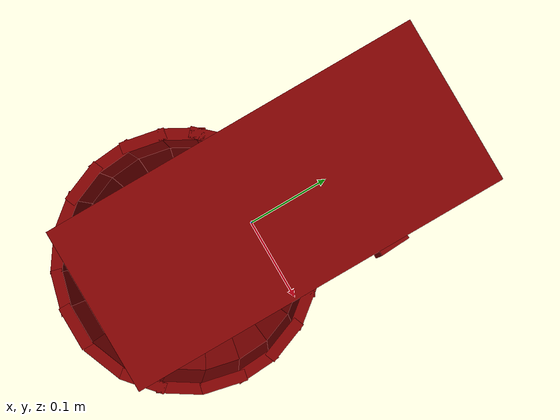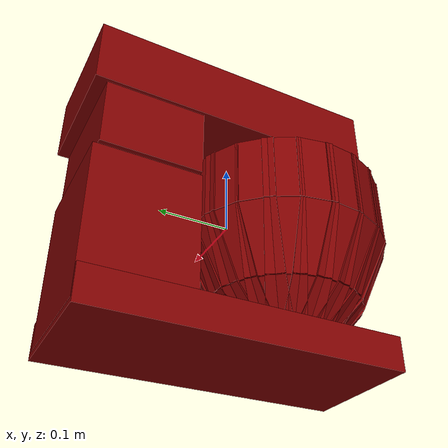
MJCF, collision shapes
<?xml version='1.0' encoding='UTF-8'?>
<mujoco model="model">
  <compiler angle="radian"/>
  <asset>
    <mesh file="visuals/Blender001.obj" name="Blender001_vis"/>
    <mesh file="visuals/Body001.obj" name="Body001_vis"/>
    <mesh file="visuals/Button001.obj" name="Button001_vis"/>
    <mesh file="visuals/Container001_Clear.obj" name="Container001_Clear_vis"/>
    <mesh file="visuals/Knob001.obj" name="Knob001_vis"/>
    <mesh file="visuals/Lid001.obj" name="Lid001_vis"/>
    <texture file="visuals/T_BC001.png" name="Body001_material" type="2d"/>
    <material name="Body001_material" rgba="1 1 1 1.0" texture="Body001_material" shininess="0.4472135901451111" specular="0.3103448502657381"/>
    <texture file="visuals/T_BC001.png" name="Button001_material" type="2d"/>
    <material name="Button001_material" rgba="1 1 1 1.0" texture="Button001_material" shininess="0.4472135901451111" specular="0.3103448502657381"/>
    <material name="Container001_Clear_material" rgba="0.550000011920929 0.550000011920929 0.550000011920929 0.8367000222206116" shininess="0.4472135901451111" specular="0.33333333333333337"/>
    <texture file="visuals/T_BC001.png" name="Knob001_material" type="2d"/>
    <material name="Knob001_material" rgba="1 1 1 1.0" texture="Knob001_material" shininess="0.4472135901451111" specular="0.3103448502657381"/>
    <texture file="visuals/T_BC001.png" name="Lid001_material" type="2d"/>
    <material name="Lid001_material" rgba="1 1 1 1.0" texture="Lid001_material" shininess="0.4472135901451111" specular="0.3103448502657381"/>
    <texture file="visuals/T_BC001.png" name="Blender001_material" type="2d"/>
    <material name="Blender001_material" rgba="1 1 1 1.0" texture="Blender001_material" shininess="0.4472135901451111" specular="0.3103448502657381"/>
  </asset>
  <default>
    <default class="visual">
      <geom conaffinity="0" contype="0" group="1" type="mesh"/>
    </default>
    <default class="collision">
      <geom group="0" rgba="0.5 0 0 0.5"/>
    </default>
    <default class="spawn">
      <geom group="0" rgba="1 1 1 0.5" contype="0" conaffinity="0"/>
      <site group="0" rgba="1 1 1 0.5"/>
    </default>
    <default class="region">
      <geom group="1" conaffinity="0" contype="0" rgba="0 1 0 0"/>
    </default>
  </default>
  <worldbody>
    <body>
      <body name="object">
        <geom mesh="Body001_vis" type="mesh" solimp="0.998 0.998 0.001" solref="0.001 1" density="100" friction="0.95 0.3 0.1" class="visual" material="Body001_material"/>
        <geom class="collision" type="box" pos="-0.001267 0.008390 -0.176519" size="0.08812396228313446 0.21000923216342926 0.02334430068731308" quat="1.0 0.0 0.0 0.0"/>
        <geom class="collision" type="box" pos="-0.004152 0.147999 -0.092349" size="0.08092296123504639 0.07070896774530411 0.10016398131847382" quat="1.0 0.0 0.0 0.0"/>
        <body name="Button001">
          <joint axis="-1.0 0.0 0.0" pos="0.087002 0.140490 -0.005048" limited="true" name="Button001_joint" range="0.0 0.005" type="slide" damping="1" frictionloss="1" armature=".01" stiffness="0.05"/>
          <geom mesh="Button001_vis" type="mesh" solimp="0.998 0.998 0.001" solref="0.001 1" density="100" friction="0.95 0.3 0.1" class="visual" material="Button001_material"/>
          <geom class="collision" type="box" pos="0.087350 0.140468 -0.005045" size="0.0029871950391680002 0.014176048338413239 0.0065616038627922535" quat="1.0 0.0 0.0 0.0"/>
        </body>
        <body name="Container001_Clear">
          <joint axis="0.0 0.0 1.0" pos="-0.000001 -0.083894 -0.054993" limited="true" name="Container001_Clear_joint" range="0.0 0.1" type="slide" damping="1" frictionloss="1" armature=".01" stiffness="0.05"/>
          <geom mesh="Container001_Clear_vis" type="mesh" solimp="0.998 0.998 0.001" solref="0.001 1" density="100" friction="0.95 0.3 0.1" class="visual" material="Container001_Clear_material"/>
          <geom class="collision" type="box" pos="-0.000001 0.054424 0.027481" size="0.02570558898150921 0.006458584684878588 0.046938300132751465" quat="1.0 0.0 0.0 0.0"/>
          <geom class="collision" type="box" pos="-0.000001 0.036126 -0.061248" size="0.025705575942993164 0.006458582356572151 0.04693828150629997" quat="0.9767361283302307 -0.21444463729858398 4.7616301237035316e-17 -2.0794026362827574e-24"/>
          <geom class="collision" type="box" pos="-0.000001 -0.002264 -0.124216" size="0.025705575942993164 0.006458582356572151 0.028294935822486877" quat="0.9315438866615295 -0.36362892389297485 8.074186059746458e-17 2.0799648968929537e-24"/>
          <geom class="collision" type="box" pos="0.080734 0.028414 0.027481" size="0.025705575942993164 0.006458581890910864 0.046938277781009674" quat="0.9518256187438965 0.0 0.0 -0.3066398501396179"/>
          <geom class="collision" type="box" pos="0.047643 -0.017613 -0.124216" size="0.025705575942993164 0.006458581890910864 0.028294933959841728" quat="0.8866673111915588 -0.34611135721206665 0.11150312423706055 -0.2856484651565552"/>
          <geom class="collision" type="box" pos="0.070053 0.013557 -0.061248" size="0.025705575942993164 0.006458581890910864 0.04693828150629997" quat="0.9296824932098389 -0.2041138857603073 0.06575727462768555 -0.29950621724128723"/>
          <geom class="collision" type="box" pos="0.111756 -0.040151 -0.061248" size="0.025705577805638313 0.0064585828222334385 0.046938277781009674" quat="0.8067450523376465 -0.17712277173995972 0.1208885982632637 -0.550614058971405"/>
          <geom class="collision" type="box" pos="0.076007 -0.054141 -0.124216" size="0.025705579668283463 0.006458581890910864 0.028294935822486877" quat="0.7694183588027954 -0.30034303665161133 0.20498785376548767 -0.5251375436782837"/>
          <geom class="collision" type="box" pos="0.128796 -0.033482 0.027481" size="0.025705577805638313 0.006458582356572151 0.046938277781009674" quat="0.8259603381156921 0.0 0.0 -0.5637282133102417"/>
          <geom class="collision" type="box" pos="0.135039 -0.113772 0.027481" size="0.025705577805638313 0.006458582356572151 0.046938277781009674" quat="0.6260642409324646 0.0 0.0 -0.7797715067863464"/>
          <geom class="collision" type="box" pos="0.079691 -0.101522 -0.124216" size="0.025705577805638313 0.006458581425249577 0.028294933959841728" quat="0.583206295967102 -0.2276550829410553 0.2835474908351898 -0.7263913750648499"/>
          <geom class="collision" type="box" pos="0.117174 -0.109818 -0.061248" size="0.025705577805638313 0.006458581425249577 0.04693828150629997" quat="0.611499547958374 -0.13425613939762115 0.16721783578395844 -0.7616310119628906"/>
          <geom class="collision" type="box" pos="0.078255 -0.174870 -0.061248" size="0.025705577805638313 0.0064585828222334385 0.046938277781009674" quat="0.3396555781364441 -0.07457218319177628 0.20106098055839539 -0.9157770276069641"/>
          <geom class="collision" type="box" pos="0.053222 -0.145765 -0.124216" size="0.025705577805638313 0.006458581890910864 0.028294933959841728" quat="0.3239401578903198 -0.12645037472248077 0.3409345746040344 -0.8734052181243896"/>
          <geom class="collision" type="box" pos="0.090187 -0.188743 0.027481" size="0.025705577805638313 0.006458582356572151 0.046938277781009674" quat="0.3477453589439392 0.0 0.0 -0.9375889897346497"/>
          <geom class="collision" type="box" pos="0.001914 -0.222180 0.027481" size="0.025792572647333145 0.006813990417867899 0.046938296407461166" quat="1.0 0.0 0.0 0.0"/>
          <geom class="collision" type="box" pos="0.001129 -0.165498 -0.124216" size="0.025705575942993164 0.006458581890910864 0.028294933959841728" quat="0.006451169960200787 -0.0025182198733091354 0.36362025141716003 -0.9315215349197388"/>
          <geom class="collision" type="box" pos="0.001661 -0.203884 -0.061248" size="0.025705575942993164 0.006458581890910864 0.046938277781009674" quat="0.00676413718611002 -0.0014850822044536471 0.21443955600261688 -0.976712703704834"/>
          <geom class="collision" type="box" pos="-0.068516 -0.182415 -0.061248" size="0.025705575942993164 0.006458580959588289 0.04693828150629997" quat="0.2921915054321289 -0.06415130198001862 -0.20462433993816376 0.9320073127746582"/>
          <geom class="collision" type="box" pos="-0.046599 -0.150897 -0.124216" size="0.025705575942993164 0.006458581425249577 0.02829493209719658" quat="0.27867206931114197 -0.10877995938062668 -0.3469770550727844 0.8888845443725586"/>
          <geom class="collision" type="box" pos="-0.078962 -0.197439 0.027481" size="0.025705575942993164 0.006458581890910864 0.046938277781009674" quat="0.29915091395378113 0.0 0.0 0.9542058110237122"/>
          <geom class="collision" type="box" pos="-0.128078 -0.136092 0.027481" size="0.025705574080348015 0.006458581425249577 0.046938277781009674" quat="0.5579116940498352 0.0 0.0 0.829900324344635"/>
          <geom class="collision" type="box" pos="-0.075584 -0.114694 -0.124216" size="0.025705577805638313 0.006458581890910864 0.028294935822486877" quat="0.5197193622589111 -0.2028728574514389 -0.3017757833003998 0.7730884552001953"/>
          <geom class="collision" type="box" pos="-0.111134 -0.129185 -0.061248" size="0.025705577805638313 0.006458581890910864 0.046938277781009674" quat="0.5449326634407043 -0.11964122951030731 -0.17796771228313446 0.8105935454368591"/>
          <geom class="collision" type="box" pos="-0.117763 -0.060764 -0.061248" size="0.025705577805638313 0.006458581425249577 0.046938277781009674" quat="0.7542586326599121 -0.16559924185276031 -0.1362476497888565 0.6205702424049377"/>
          <geom class="collision" type="box" pos="-0.080093 -0.068160 -0.124216" size="0.025705577805638313 0.006458582356572151 0.028294933959841728" quat="0.7193601727485657 -0.28080278635025024 -0.23103196918964386 0.5918571949005127"/>
          <geom class="collision" type="box" pos="-0.135719 -0.057239 0.027481" size="0.025705577805638313 0.006458582356572151 0.046938277781009674" quat="0.7722236514091492 0.0 0.0 0.6353508234024048"/>
          <geom class="collision" type="box" pos="-0.101329 0.010253 0.027481" size="0.025705577805638313 0.006458582356572151 0.046938277781009674" quat="0.9166881442070007 0.0 0.0 0.39960339665412903"/>
          <geom class="collision" type="box" pos="-0.059799 -0.028331 -0.124216" size="0.025705575942993164 0.006458581890910864 0.028294933959841728" quat="0.853935182094574 -0.33333441615104675 -0.14530742168426514 0.3722480535507202"/>
          <geom class="collision" type="box" pos="-0.087924 -0.002202 -0.061248" size="0.025705575942993164 0.006458582356572151 0.046938277781009674" quat="0.8953624367713928 -0.19657891988754272 -0.08569283783435822 0.39030706882476807"/>
          <geom class="collision" type="box" pos="-0.057267 0.021581 -0.061248" size="0.025705577805638313 0.006458581890910864 0.04693828523159027" quat="0.9466809034347534 -0.207846000790596 -0.052787940949201584 0.2404344528913498"/>
          <geom class="collision" type="box" pos="-0.038949 -0.012156 -0.124216" size="0.025705575942993164 0.006458581425249577 0.028294933959841728" quat="0.9028792977333069 -0.35243967175483704 -0.08951130509376526 0.2293098419904709"/>
          <geom class="collision" type="box" pos="-0.065998 0.037662 0.027481" size="0.025705575942993164 0.006458581890910864 0.046938277781009674" quat="0.9692289233207703 0.0 0.0 0.24616104364395142"/>
          <geom class="collision" type="box" pos="-0.034382 0.050082 0.027481" size="0.025705579668283463 0.0064585828222334385 0.046938277781009674" quat="0.9921219944953918 0.0 0.0 0.12527567148208618"/>
          <geom class="collision" type="box" pos="-0.020290 -0.004826 -0.124216" size="0.025705577805638313 0.006458581890910864 0.028294937685132027" quat="0.9242050647735596 -0.36076441407203674 -0.04555392265319824 0.11669988930225372"/>
          <geom class="collision" type="box" pos="-0.029833 0.032359 -0.061248" size="0.025705575942993164 0.006458581890910864 0.04693828150629997" quat="0.9690413475036621 -0.21275539696216583 -0.026864733546972275 0.12236134707927704"/>
          <geom class="collision" type="box" pos="0.033231 0.031432 -0.061248" size="0.025705574080348015 0.006458582356572151 0.046938277781009674" quat="0.9671400785446167 -0.21233786642551422 0.029985971748828888 -0.136577770113945"/>
          <geom class="collision" type="box" pos="0.022601 -0.005456 -0.124216" size="0.025705575942993164 0.006458581890910864 0.028294933959841728" quat="0.9223918318748474 -0.36005645990371704 0.050846535712480545 -0.13025857508182526"/>
          <geom class="collision" type="box" pos="0.038298 0.049015 0.027481" size="0.025705575942993164 0.006458581890910864 0.046938277781009674" quat="0.9901754260063171 0.0 0.0 -0.13983088731765747"/>
          <geom class="collision" type="box" pos="0.108003 0.002511 0.027481" size="0.025705575942993164 0.006458581890910864 0.046938277781009674" quat="0.9012930989265442 0.0 0.0 -0.4332098364830017"/>
          <geom class="collision" type="box" pos="0.063736 -0.032900 -0.124216" size="0.025705575942993164 0.006458581890910864 0.028294933959841728" quat="0.8395941257476807 -0.3277362585067749 0.1575275957584381 -0.40355387330055237"/>
          <geom class="collision" type="box" pos="0.093714 -0.008919 -0.061248" size="0.025705575942993164 0.006458582356572151 0.046938277781009674" quat="0.8803255558013916 -0.1932775378227234 0.09289952367544174 -0.4231316149234772"/>
          <geom class="collision" type="box" pos="0.119729 -0.075692 -0.061248" size="0.025705575942993164 0.006458581890910864 0.04693828150629997" quat="0.7138432264328003 -0.15672601759433746 0.14636774361133575 -0.6666643023490906"/>
          <geom class="collision" type="box" pos="0.081429 -0.078313 -0.124216" size="0.025705575942993164 0.006458581890910864 0.028294935822486877" quat="0.6808146834373474 -0.26575663685798645 0.24819232523441315 -0.6358186602592468"/>
          <geom class="collision" type="box" pos="0.137984 -0.074442 0.027481" size="0.025705577805638313 0.006458582356572151 0.046938277781009674" quat="0.7308457493782043 0.0 0.0 -0.6825426816940308"/>
          <geom class="collision" type="box" pos="0.116759 -0.158021 0.027481" size="0.025705575942993164 0.006458581890910864 0.046938277781009674" quat="0.48165175318717957 0.0 0.0 -0.876362681388855"/>
          <geom class="collision" type="box" pos="0.068903 -0.127635 -0.124216" size="0.025705575942993164 0.006458581890910864 0.028294933959841728" quat="0.4486798346042633 -0.1751425564289093 0.31867077946662903 -0.8163702487945557"/>
          <geom class="collision" type="box" pos="0.101312 -0.148213 -0.061248" size="0.025705575942993164 0.006458581890910864 0.04693828150629997" quat="0.4704466760158539 -0.10328767448663712 0.18793144822120667 -0.8559750914573669"/>
          <geom class="collision" type="box" pos="0.043483 -0.195740 -0.061248" size="0.025705574080348015 0.006458581890910864 0.046938274055719376" quat="0.18004021048545837 -0.03952828422188759 0.21077024936676025 -0.9599994421005249"/>
          <geom class="collision" type="box" pos="0.029573 -0.159959 -0.124216" size="0.025705574080348015 0.006458582356572151 0.028294935822486877" quat="0.17170999944210052 -0.06702714413404465 0.3573980927467346 -0.9155815839767456"/>
          <geom class="collision" type="box" pos="0.050113 -0.212795 0.027481" size="0.025705574080348015 0.006458581425249577 0.046938277781009674" quat="0.18432840704917908 0.0 0.0 -0.9828647375106812"/>
          <geom class="collision" type="box" pos="-0.037824 -0.216921 0.027481" size="0.025705577805638313 0.006458582356572151 0.046938277781009674" quat="0.1380549669265747 0.0 0.0 0.9904245734214783"/>
          <geom class="collision" type="box" pos="-0.022322 -0.162394 -0.124216" size="0.025705577805638313 0.006458582356572151 0.028294935822486877" quat="0.12860426306724548 -0.05020077899098396 -0.36014705896377563 0.9226239323616028"/>
          <geom class="collision" type="box" pos="-0.032820 -0.199321 -0.061248" size="0.025705577805638313 0.0064585828222334385 0.04693828150629997" quat="0.13484327495098114 -0.029605163261294365 -0.21239140629768372 0.9673834443092346"/>
          <geom class="collision" type="box" pos="-0.093779 -0.158773 -0.061248" size="0.025705575942993164 0.006458581890910864 0.046938277781009674" quat="0.42349377274513245 -0.0929790511727333 -0.19323931634426117 0.8801513910293579"/>
          <geom class="collision" type="box" pos="-0.063781 -0.134817 -0.124216" size="0.025705575942993164 0.006458581890910864 0.028294933959841728" quat="0.40389928221702576 -0.15766246616840363 -0.3276715576648712 0.8394279479980469"/>
          <geom class="collision" type="box" pos="-0.108077 -0.170192 0.027481" size="0.025705575942993164 0.006458581890910864 0.046938277781009674" quat="0.43358051776885986 0.0 0.0 0.901114821434021"/>
          <geom class="collision" type="box" pos="-0.137741 -0.096418 0.027481" size="0.025705575942993164 0.006458581890910864 0.046938277781009674" quat="0.6743085384368896 0.0 0.0 0.73844975233078"/>
          <geom class="collision" type="box" pos="-0.081286 -0.091281 -0.124216" size="0.025705574080348015 0.006458582356572151 0.028294933959841728" quat="0.6281480193138123 -0.24519814550876617 -0.26852166652679443 0.6878982782363892"/>
          <geom class="collision" type="box" pos="-0.119518 -0.094760 -0.061248" size="0.025705575942993164 0.006458581890910864 0.046938277781009674" quat="0.6586214900016785 -0.14460185170173645 -0.1583566665649414 0.7212705612182617"/>
          <geom class="collision" type="box" pos="-0.105114 -0.025972 -0.061248" size="0.025705577805638313 0.006458581890910864 0.04693828150629997" quat="0.8409484624862671 -0.1846322864294052 -0.10907559096813202 0.4968089163303375"/>
          <geom class="collision" type="box" pos="-0.071490 -0.044497 -0.124216" size="0.025705575942993164 0.006458582356572151 0.028294935822486877" quat="0.8020390272140503 -0.31307661533355713 -0.184956893324852 0.47382208704948425"/>
          <geom class="collision" type="box" pos="-0.121140 -0.017142 0.027481" size="0.025705575942993164 0.006458581890910864 0.046938277781009674" quat="0.8609783053398132 0.0 0.0 0.5086416602134705"/>
          <geom class="collision" type="cylinder" pos="-0.000193 -0.083554 -0.150552" size="0.06042349338531494 0.0023591474164277315" quat="1.0 0.0 0.0 0.0"/>
        </body>
        <body name="Knob001">
          <joint axis="-1.0 0.0 0.0" pos="0.098159 0.141571 -0.114639" limited="true" name="Knob001_joint" range="0.0 5.061454830783556" type="hinge" damping="0.05" armature="0.001"/>
          <geom mesh="Knob001_vis" type="mesh" solimp="0.998 0.998 0.001" solref="0.001 1" density="100" friction="0.95 0.3 0.1" class="visual" material="Knob001_material"/>
          <geom class="collision" type="cylinder" pos="0.093969 0.141333 -0.114440" size="0.03240782395005226 0.0019367868080735207" quat="0.7071068286895752 -0.0 0.7071067690849304 0.0"/>
          <geom class="collision" type="box" pos="0.107677 0.141329 -0.114378" size="0.011869127862155437 0.0072041647508740425 0.02584173157811165" quat="0.8660253882408142 0.5 0.0 0.0"/>
        </body>
        <body name="Lid001">
          <joint axis="-1.0 0.0 0.0" pos="-0.000001 0.208847 0.015020" limited="true" name="Lid001_joint" range="0.0 1.5707963267948966" type="hinge" damping="1" frictionloss="1" armature=".01" stiffness="0.05"/>
          <geom mesh="Lid001_vis" type="mesh" solimp="0.998 0.998 0.001" solref="0.001 1" density="100" friction="0.95 0.3 0.1" class="visual" material="Lid001_material"/>
          <geom class="collision" type="box" pos="-0.001267 0.026437 0.155216" size="0.08812396228313446 0.20114971697330475 0.04650690034031868" quat="1.0 0.0 0.0 0.0"/>
          <geom class="collision" type="cylinder" pos="0.000641 -0.083012 0.094649" size="0.05742409825325012 0.022142428904771805" quat="1.0 0.0 0.0 0.0"/>
          <geom class="collision" type="box" pos="0.000245 0.144240 0.063723" size="0.08468689769506454 0.06694968789815903 0.04944663122296333" quat="1.0 0.0 0.0 0.0"/>
          <body name="Blender001">
            <joint axis="0.0 0.0 1.0" pos="-0.000059 -0.084087 -0.021837" limited="false" name="Blender001_joint" range="0 360" type="hinge" damping="1" frictionloss="1" armature=".01" stiffness="0.05"/>
            <geom mesh="Blender001_vis" type="mesh" solimp="0.998 0.998 0.001" solref="0.001 1" density="100" friction="0.95 0.3 0.1" class="visual" material="Blender001_material"/>
            <geom class="collision" type="cylinder" pos="0.000293 -0.083723 0.055921" size="0.009270640090107918 0.014159394428133965" quat="1.0 0.0 0.0 0.0"/>
            <geom class="collision" type="cylinder" pos="0.000293 -0.084925 0.038010" size="0.019681351259350777 0.011102014221251011" quat="1.0 0.0 0.0 0.0"/>
            <geom class="collision" type="cylinder" pos="0.000293 -0.084925 -0.025406" size="0.07535043358802795 0.06729623675346375" quat="1.0 0.0 0.0 0.0"/>
          </body>
        </body>
        <geom class="region" name="reg_main" type="box" pos="0.0028560000000000044 0.013543999999999987 0.0" size="0.08729 0.21404600000000001 0.2"/>
      </body>
    </body>
  </worldbody>
  <actuator>
    <motor name="Button001_joint_actuator" joint="Button001_joint" gear="0.1"/>
    <motor name="Container001_Clear_joint_actuator" joint="Container001_Clear_joint" gear="100"/>
    <motor name="Knob001_joint_actuator" joint="Knob001_joint" gear="10"/>
    <motor name="Lid001_joint_actuator" joint="Lid001_joint" gear="50"/>
    <motor name="Blender001_joint_actuator" joint="Blender001_joint" gear="10"/>
  </actuator>
</mujoco>
